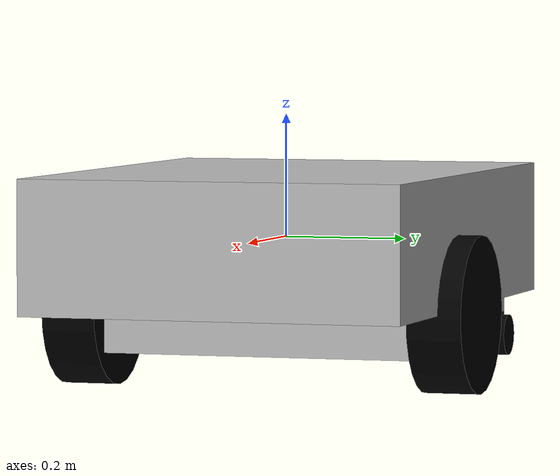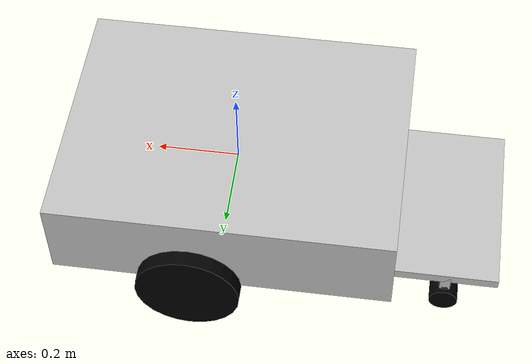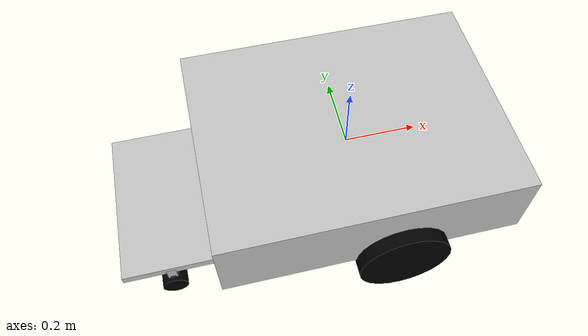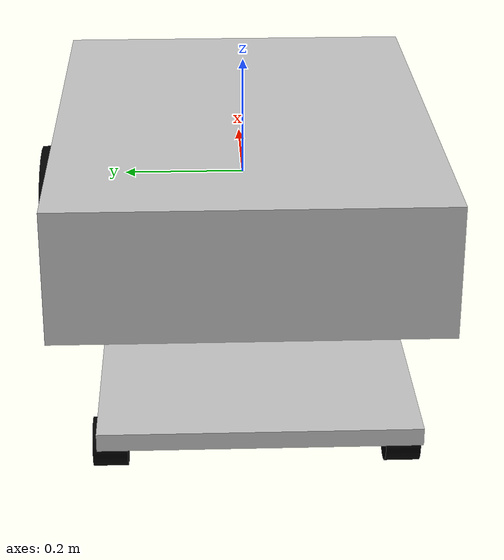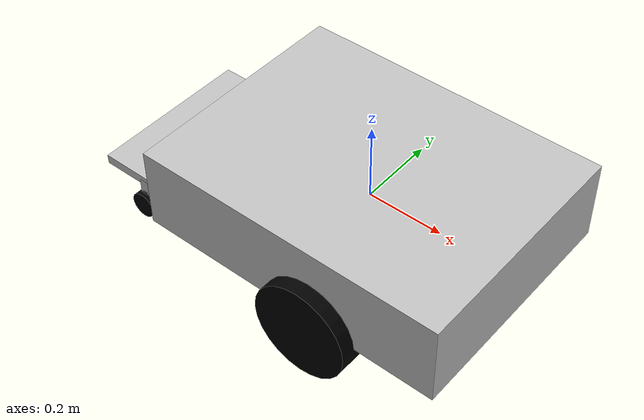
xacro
<?xml version="1.0"?>
<robot name="taurusbot"
xmlns:xacro="http://www.ros.org/wiki/xacro">

<!-- #################### versions without origin #################### -->

 <xacro:macro name="box_inertial" params="x y z mass">
    <inertial>
      <mass value="${mass}" />
      <origin xyz="0 0 0" />
      <inertia ixx="${0.0833333 * mass * (y*y + z*z)}" ixy="0.0" ixz="0.0"
        iyy="${0.0833333 * mass * (x*x + z*z)}" iyz="0.0"
        izz="${0.0833333 * mass * (x*x + y*y)}" />
    </inertial>
  </xacro:macro>

    <xacro:macro name="cylinder_inertial" params="radius length mass">
    <inertial>
      <mass value="${mass}" />
      <origin xyz="0 0 0" />
      <inertia ixx="${0.0833333 * mass * (3 * radius * radius + length * length)}" ixy="0.0" ixz="0.0"
        iyy="${0.0833333 * mass * (3 * radius * radius + length * length)}" iyz="0.0"
        izz="${0.5 * mass * radius * radius}" />
    </inertial>
  </xacro:macro>

  <link name="base_link">
    <visual>
      <geometry>
        <box size="0.8255 0.6223 0.2159"/>
      </geometry>
      <material name="silver">
        <color rgba="0.75 0.75 0.75 1"/>
      </material>
    </visual>
    <collision>
     <geometry>
      <box size="0.8255 0.6223 0.2159"/>
     </geometry>
    </collision>

	<xacro:box_inertial mass="200.0" x="0.8255" y="0.6223" z="0.2159"/>

  </link>

    <joint name="base_to_motor_joint" type="fixed">
    <axis xyz="0 0 0"/>
    <parent link="base_link"/>
    <child link="motor"/>
    <origin rpy="0 0 0" xyz="0.0762 0 -0.1143"/>
    </joint>

    <link name="motor">
    <visual>
            <geometry>
                <box size="0.1524 0.6096 0.1397"/>
            </geometry>
                  <material name="silver">
                    <color rgba="0.75 0.75 0.75 1"/>
                   </material>
        </visual>

        <collision>
     <geometry>
      <box size="0.1524 0.6096 0.1397"/>
     </geometry>
    </collision>

	<xacro:box_inertial mass="300.0" x="0.1524" y="0.6086" z="0.1397"/>

    </link>

    <joint name="left_wheel_joint" type="continuous">
        <axis xyz="0 0 1"/>
           <parent link="motor"/>
        <child link="motor_left_wheel"/>
        <origin rpy="-1.5708 0 0" xyz="0 0.3048 0"/>
        </joint>

    <joint name="right_wheel_joint" type="continuous">
        <axis xyz="0 0 1"/>
           <parent link="motor"/>
        <child link="motor_right_wheel"/>
        <origin rpy="-1.5708 0 0" xyz="0 -0.3048 0"/>
        </joint>

  <link name="motor_right_wheel">
    <visual>
      <geometry>
        <cylinder length="0.0889" radius="0.127"/>
      </geometry>
      <material name="black">
        <color rgba="0 0 0 1"/>
      </material>
    </visual>

    <collision>
     <geometry>
        <cylinder length="0.0889" radius="0.127"/>
      </geometry>
    </collision>

	<xacro:cylinder_inertial radius="0.127" length="0.0889" mass="80.0"/>

  </link>

  <link name="motor_left_wheel">
    <visual>
      <geometry>
        <cylinder length="0.0889" radius="0.127"/>
      </geometry>
      <material name="black">
        <color rgba="0 0 0 1"/>
      </material>
    </visual>

        <collision>
     <geometry>
        <cylinder length="0.0889" radius="0.127"/>
      </geometry>
    </collision>

	<xacro:cylinder_inertial radius="0.127" length="0.0889" mass="80.0"/>

  </link>

    <joint name="base_to_rearplatform" type="fixed">
    <axis xyz="0 0 0"/>
    <parent link="base_link"/>
    <child link="rearplatform"/>
    <origin rpy="0 0 0" xyz="-0.53975 0 -0.12065"/>
    </joint>

    <link name="rearplatform">
    <visual>
            <geometry>
                <box size="0.254 0.4445 0.0254"/>
            </geometry>
                  <material name="silver">
                    <color rgba="0.75 0.75 0.75 1"/>
                   </material>
        </visual>

                <collision>
     <geometry>
                <box size="0.254 0.4445 0.0254"/>
      </geometry>
    </collision>

	<xacro:box_inertial mass="10.0" x="0.254" y="0.4445" z="0.0254"/>

    </link>

    <joint name="rearplatform_to_rlwCaster" type="fixed">
    <axis xyz="0 0 0"/>
    <parent link="rearplatform"/>
    <child link="rlwCaster"/>
    <origin rpy="0 0 0" xyz="0 0.20955 -0.0254"/>
    </joint>

            <link name="rlwCaster">
    <visual>
            <geometry>
                <box size="0.0254 0.0254 0.0508"/>
            </geometry>
                  <material name="silver">
                    <color rgba="0.75 0.75 0.75 1"/>
                   </material>
        </visual>

                        <collision>
     <geometry>
                <box size="0.0254 0.0254 0.0508"/>
      </geometry>
    </collision>

    <xacro:box_inertial mass="7.0" x="0.0254" y="0.0254" z="0.0508"/>
    </link>

   <joint name="rlwCaster to rlwJointCaster" type="continuous">
    <axis xyz="0 0 1"/>
    <parent link="rlwCaster"/>
    <child link="rlwJointCaster"/>
    <origin rpy="0 0 0" xyz="0 0.0 -0.0254"/>
    </joint>

 <link name="rlwJointCaster">
    <visual>
      <geometry>
        <cylinder length="0.03" radius="0.015"/>
      </geometry>
      <material name="black">
        <color rgba="0 0 0 1"/>
      </material>
    </visual>

        <collision>
     <geometry>
        <cylinder length="0.03" radius="0.015"/>
     </geometry>
    </collision>

	<xacro:cylinder_inertial radius="0.015" length="0.03" mass="8.0"/>

  </link>

    <joint name="rlwJointCaster to rlw" type="continuous">
    <axis xyz="0 0 1"/>
    <parent link="rlwJointCaster"/>
    <child link="rlw"/>
    <origin rpy="-1.5708 0 0" xyz="0 0.0 -0.0254"/>
    </joint>

      <link name="rlw">
    <visual>
      <geometry>
        <cylinder length="0.05" radius="0.035"/>
      </geometry>
      <material name="black">
        <color rgba="0 0 0 1"/>
      </material>
    </visual>

        <collision>
     <geometry>
        <cylinder length="0.05" radius="0.035"/>
     </geometry>
    </collision>

	     	   	<xacro:cylinder_inertial radius="0.035" length="0.05" mass="16.0"/>
  </link>

        <joint name="rearplatform_to_rrwCaster" type="fixed">
    <axis xyz="0 0 0"/>
    <parent link="rearplatform"/>
    <child link="rrwCaster"/>
    <origin rpy="0 0 0" xyz="0 -0.20955 -0.0254"/>
    </joint>

    <link name="rrwCaster">
    <visual>
            <geometry>
                <box size="0.0254 -0.0254 0.0508"/>
            </geometry>
                  <material name="silver">
                    <color rgba="0.75 0.75 0.75 1"/>
                   </material>
        </visual>

            <collision>
     <geometry>
                <box size="0.0254 -0.0254 0.0508"/>
     </geometry>
    </collision>

	<xacro:box_inertial mass="7.0" x="0.0254" y="-0.0254" z="0.0508"/>
    </link>

    <joint name="rrwCaster to rrwJointCaster" type="continuous">
    <axis xyz="0 0 1"/>
    <parent link="rrwCaster"/>
    <child link="rrwJointCaster"/>
    <origin rpy="0 0 0" xyz="0 0.0 -0.0254"/>
    </joint>

 <link name="rrwJointCaster">
    <visual>
      <geometry>
        <cylinder length="0.03" radius="0.015"/>
      </geometry>
      <material name="black">
        <color rgba="0 0 0 1"/>
      </material>
    </visual>

        <collision>
     <geometry>
        <cylinder length="0.03" radius="0.015"/>
     </geometry>
    </collision>

	<xacro:cylinder_inertial radius="0.015" length="0.03" mass="8.0"/>

  </link>

    <joint name="rrwJointCaster to rrw" type="continuous">
    <axis xyz="0 0 1"/>
    <parent link="rrwJointCaster"/>
    <child link="rrw"/>
    <origin rpy="1.5708 0 0" xyz="0 0.0 -0.0254"/>
    </joint>

      <link name="rrw">

    <visual>
      <geometry>
        <cylinder length="0.05" radius="0.035"/>
      </geometry>
      <material name="black">
        <color rgba="0 0 0 1"/>
      </material>
    </visual>

        <collision>
     <geometry>
        <cylinder length="0.05" radius="0.035"/>
     </geometry>
    </collision>

	   	<xacro:cylinder_inertial radius="0.035" length="0.05" mass="16.0"/>

  </link>

<gazebo>
    <plugin name="differential_drive_controller"
            filename="libgazebo_ros_diff_drive.so">
      <leftJoint>left_wheel_joint</leftJoint>
      <rightJoint>right_wheel_joint</rightJoint>
      <robotBaseFrame>base_link</robotBaseFrame>
      <wheelSeparation>0.5207</wheelSeparation>
      <wheelDiameter>0.254</wheelDiameter>
      <publishWheelJointState>true</publishWheelJointState>
      <legacyMode>false</legacyMode>
      <wheelTorque>180</wheelTorque>

    </plugin>
  </gazebo>

</robot>
